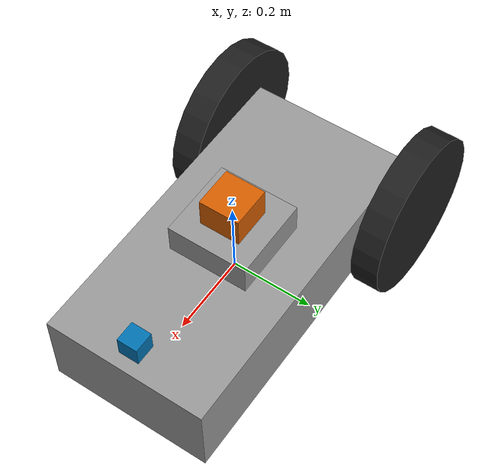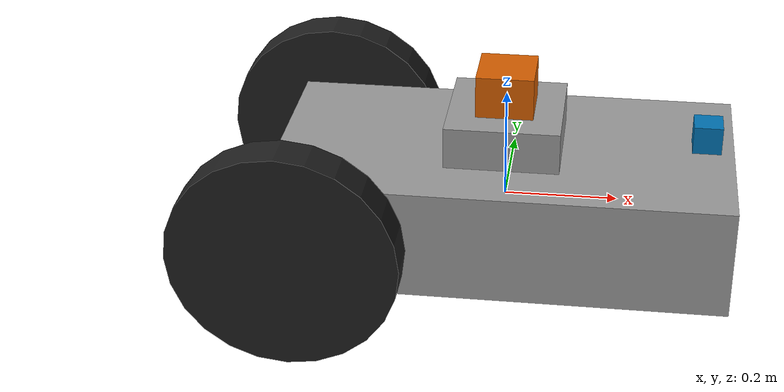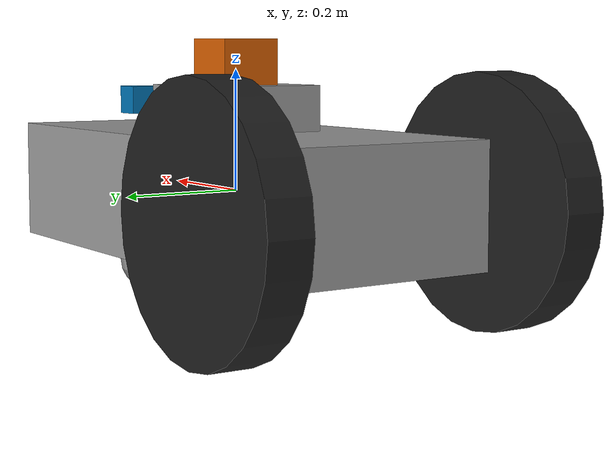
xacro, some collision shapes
<?xml version='1.0'?>

<robot name='my_robot' xmlns:xacro="http://www.ros.org/wiki/xacro">
<xacro:include filename="$(find my_robot)/urdf/my_robot.gazebo" />

	<gazebo reference='robot_base'>
		<material> Gazebo/Grey </material>
	</gazebo>

	<gazebo reference='LeftBackWheel'>
		<material> Gazebo/FlatBlack </material>
	</gazebo>

	<gazebo reference='RightBackWheel'>
		<material> Gazebo/FlatBlack </material>
	</gazebo>

	<link name="robot_footprint"> </link>

  	<joint name="robot_footprint_joint" type="fixed">
    		<origin xyz="0 0 0" rpy="0 0 0" />
    		<parent link="robot_footprint"/>
   		<child link="robot_base" />
  	</joint>

	<link name="robot_base">

	<visual name = 'robot_base_visual'>
        	<origin xyz = '0 0 0' rpy = '0 0 0' />
        	<geometry> <box size='0.8 0.4 0.2'/> </geometry>
   	</visual>

	<visual name = 'robot_LidarPlate'>
        	<origin xyz = '0 0 0.1' rpy = '0 0 0' />
        	<geometry> <box size='0.2 0.2 0.15'/> </geometry>
   	</visual>

	<visual name='front_caster_visual'>
      	<origin xyz="0.3 0 -0.15" rpy=" 0 0 0"/>
      	<geometry>
        	<sphere radius="0.06"/>
     	 </geometry>
        </visual>

	<collision name='front_caster_collision'>
      	<origin xyz="0.3 0 -0.15" rpy=" 0 0 0"/>
      		<geometry>
        		<sphere radius="0.06"/>
      		</geometry>
    	</collision>

    	<collision name = 'collision' >
        	<origin xyz = '0 0 0' rpy = '0 0 0' />
        	<geometry> <box size='0.8 0.4 0.2'/> </geometry>
    	</collision>

    	<inertial>
        	<origin xyz = '0 0 0' rpy='0 0 0' />
        	<mass value='8'/>
        	<inertia ixx="0.1" ixy="0" ixz="0" iyy="0.1" iyz="0" izz="0.1"/>
    	</inertial>

    </link>

    <link name="LeftBackWheel">

    	<visual name='LeftBackWheel_visual'>
        	<origin xyz = '0 0 0' rpy = '1.5707 1.5707 0' />
        	<geometry> <cylinder radius='0.2' length='0.07'/> </geometry>
    	</visual>

        <collision name = 'collision'>
        	<origin xyz = '0 0 0' rpy = '1.5707 1.5707 0' />
        	<geometry> <cylinder radius='0.2' length='0.07'/> </geometry>
        </collision>

        <inertial>
        	<origin xyz = '0 0 0' rpy='0 0 0' />
        	<mass value='5' />
        	<inertia ixx="0.1" ixy="0" ixz="0" iyy="0.1" iyz="0" izz="0.1" />
        </inertial>

    </link>

    <link name="RightBackWheel">

    	<visual name='RightBackWheel_visual'>
        	<origin xyz = '0 0 0' rpy = '1.5707 1.5707 0' />
        	<geometry> <cylinder radius='0.2' length='0.07'/> </geometry>
    	</visual>

        <collision name = 'collision'>
        	<origin xyz = '0 0 0' rpy = '1.5707 1.5707 0' />
        	<geometry> <cylinder radius='0.2' length='0.07'/> </geometry>
        </collision>

        <inertial>
        	<origin xyz = '0 0 0' rpy='0 0 0' />
        	<mass value='5' />
        	<inertia ixx="0.1" ixy="0" ixz="0" iyy="0.1" iyz="0" izz="0.1" />
        </inertial>

    </link>

    <link name='camera'>

	<visual name='camera_visual'>
		<origin xyz ='0 0 0' rpy='0 0 0' />
		<geometry> <box size='0.05 .05 .05'/> </geometry>
	</visual>

	<collision name = 'collision'>
		<origin xyz ='0 0 0' rpy='0 0 0' />
		<geometry> <box size='0.05 0.05 0.05'/> </geometry>
	</collision>

	<inertial>
		<origin xyz='0.05 0.05 0.05' rpy = '0 0 0' />
		<mass value='0.1'/>
		<inertia ixx="1e-6" ixy="0" ixz="0" iyy="1e-6" iyz="0" izz="1e-6" />
        </inertial>

    </link>

    <link name='hokuyo'>

	<visual name='hokuyo_visual'>
		<origin xyz ='0 0 0' rpy='0 0 0' />
		<geometry> <mesh filename="package://my_robot/meshes/hokuyo.dae"/> </geometry>
	</visual>

	<collision name = 'collision'>
		<origin xyz ='0 0 0' rpy='0 0 0' />
		<geometry> <box size='0.1 0.1 0.1'/> </geometry>
	</collision>

	<inertial>
		<origin xyz='0.0 0.0 0.0' rpy = '0 0 0' />
		<mass value='1e-5'/>
		<inertia ixx="1e-6" ixy="0" ixz="0" iyy="1e-6" iyz="0" izz="1e-6" />
        </inertial>

    </link>

  <joint type="continuous" name="joint_LeftBackWheel">
    <origin xyz="-0.35 0.25 0" rpy="0 0 0"/>
    <child link="LeftBackWheel"/>
    <parent link="robot_base"/>
    <axis xyz="0 1 0" rpy="0 0 0"/>
    <limit effort="10000" velocity="1000"/>
    <dynamics damping="1.0" friction="1.0"/>
  </joint>

  <joint type="continuous" name="joint_RightBackWheel">
    <origin xyz="-0.35 -0.25 0" rpy="0 0 0"/>
    <child link="RightBackWheel"/>
    <parent link="robot_base"/>
    <axis xyz="0 1 0" rpy="0 0 0"/>
    <limit effort="10000" velocity="1000"/>
    <dynamics damping="1.0" friction="1.0"/>
  </joint>

    <joint name ='camera_joint' type = 'fixed'>
	<origin xyz='0.35 0 0.14' rpy='0 0 0' />
	<parent link='robot_base'/>
	<child link='camera' />
	<axis xyz='0 1 0' />
    </joint>

    <joint name ='hokuyo_joint' type = 'fixed'>
	<origin xyz='0 0 0.2' rpy='0 0 0' />
	<parent link='robot_base'/>
	<child link='hokuyo' />
	<axis xyz='0 1 0' />
    </joint>

</robot>
